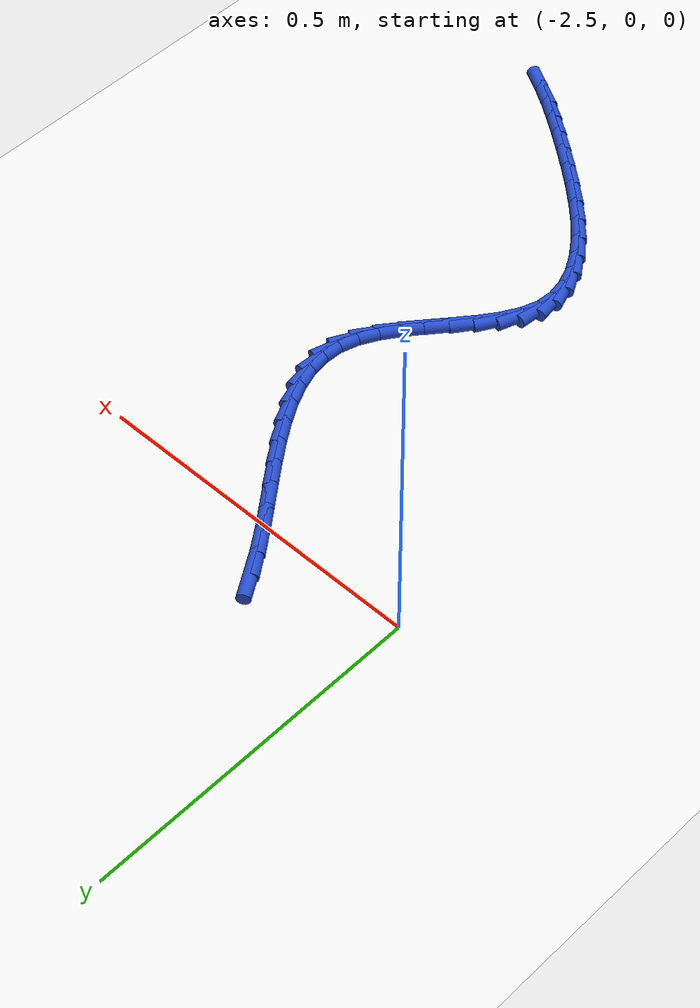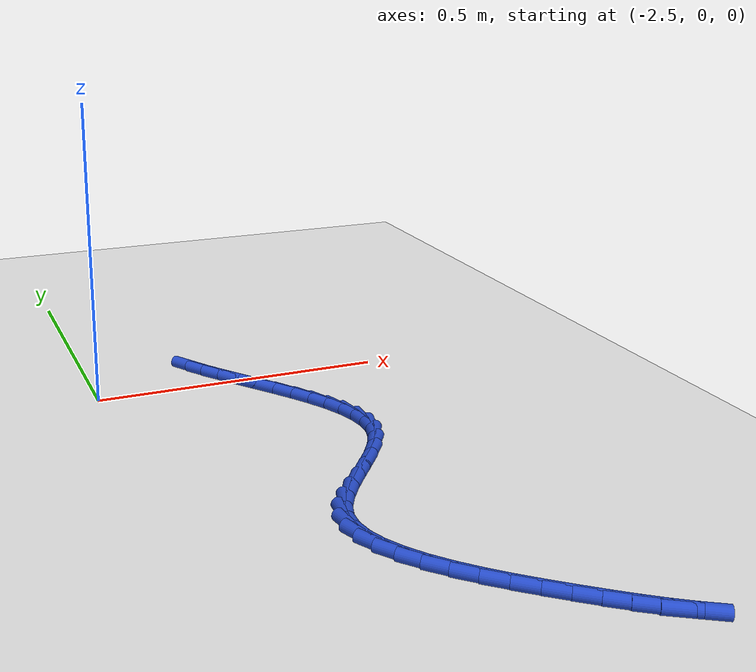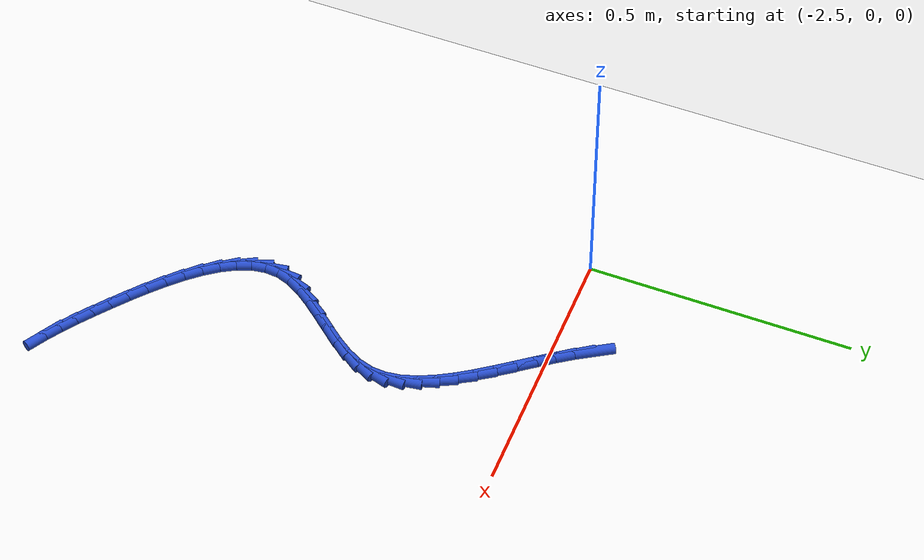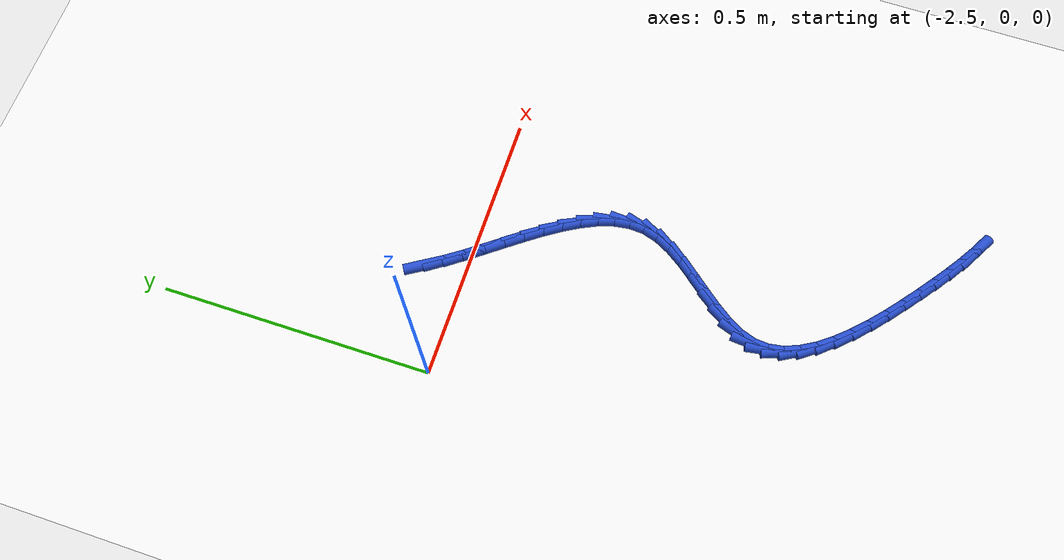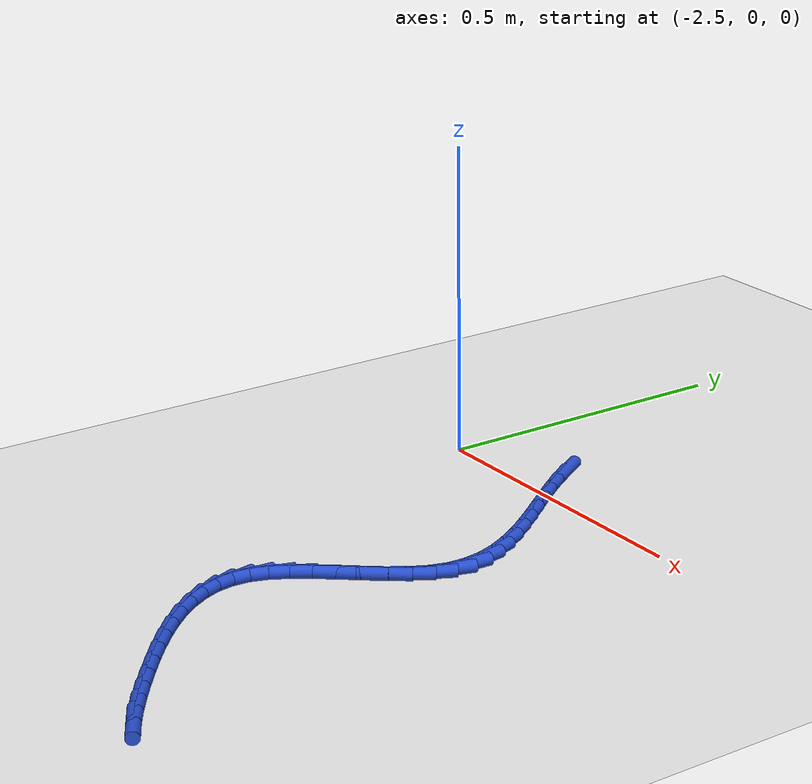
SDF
<sdf version="1.6">
 <world name="default">
  <model name="ground_plane">
   <static>1</static>
   <link name="link">
    <collision name="collision">
     <geometry><plane><normal>0 0 1</normal><size>100 100</size></plane></geometry>
     <surface><friction><ode><mu>100</mu><mu2>50</mu2></ode></friction></surface>
    </collision>
    <visual name="visual">
     <cast_shadows>0</cast_shadows>
     <geometry><plane><normal>0 0 1</normal><size>100 100</size></plane></geometry>
     <material>
      <script><uri>file://media/materials/scripts/gazebo.material</uri><name>Gazebo/WhiteGlow</name></script>
     </material>
    </visual>
   </link>
  </model>
  <model name="line">
   <link name="link_146">
    <pose>-2.315279855763042 0.0722972242808466 0.01 0 1.57 -1.017816893994714</pose>
    <collision name="collision">
     <geometry><cylinder><radius>0.01</radius><length>0.08</length></cylinder></geometry>
    </collision>
    <visual name="visual">
     <material>
      <script><name>Gazebo/Blue</name><uri>file://media/materials/scripts/gazebo.material</uri></script>
     </material>
     <geometry><cylinder><radius>0.01</radius><length>0.08</length></cylinder></geometry>
    </visual>
   </link>
   <link name="link_147">
    <pose>-2.2972540601399776 0.04309203704351529 0.01 0 1.57 -0.9662664591276655</pose>
    <collision name="collision">
     <geometry><cylinder><radius>0.01</radius><length>0.08</length></cylinder></geometry>
    </collision>
    <visual name="visual">
     <material>
      <script><name>Gazebo/Blue</name><uri>file://media/materials/scripts/gazebo.material</uri></script>
     </material>
     <geometry><cylinder><radius>0.01</radius><length>0.08</length></cylinder></geometry>
    </visual>
   </link>
   <link name="link_148">
    <pose>-2.2768504202480457 0.013556112961757995 0.01 0 1.57 -0.9357931041575855</pose>
    <collision name="collision">
     <geometry><cylinder><radius>0.01</radius><length>0.08</length></cylinder></geometry>
    </collision>
    <visual name="visual">
     <material>
      <script><name>Gazebo/Blue</name><uri>file://media/materials/scripts/gazebo.material</uri></script>
     </material>
     <geometry><cylinder><radius>0.01</radius><length>0.08</length></cylinder></geometry>
    </visual>
   </link>
   <link name="link_149">
    <pose>-2.254903447379552 -0.01623053103309701 0.01 0 1.57 -0.9232955045381015</pose>
    <collision name="collision">
     <geometry><cylinder><radius>0.01</radius><length>0.08</length></cylinder></geometry>
    </collision>
    <visual name="visual">
     <material>
      <script><name>Gazebo/Blue</name><uri>file://media/materials/scripts/gazebo.material</uri></script>
     </material>
     <geometry><cylinder><radius>0.01</radius><length>0.08</length></cylinder></geometry>
    </visual>
   </link>
   <link name="link_150">
    <pose>-2.232247652826802 -0.04618787800972144 0.01 0 1.57 -0.9274213176591661</pose>
    <collision name="collision">
     <geometry><cylinder><radius>0.01</radius><length>0.08</length></cylinder></geometry>
    </collision>
    <visual name="visual">
     <material>
      <script><name>Gazebo/Blue</name><uri>file://media/materials/scripts/gazebo.material</uri></script>
     </material>
     <geometry><cylinder><radius>0.01</radius><length>0.08</length></cylinder></geometry>
    </visual>
   </link>
   <link name="link_151">
    <pose>-2.209717547882098 -0.0762359110367869 0.01 0 1.57 -0.948360529244994</pose>
    <collision name="collision">
     <geometry><cylinder><radius>0.01</radius><length>0.08</length></cylinder></geometry>
    </collision>
    <visual name="visual">
     <material>
      <script><name>Gazebo/Blue</name><uri>file://media/materials/scripts/gazebo.material</uri></script>
     </material>
     <geometry><cylinder><radius>0.01</radius><length>0.08</length></cylinder></geometry>
    </visual>
   </link>
   <link name="link_152">
    <pose>-2.1881476438377447 -0.10629461318296515 0.01 0 1.57 -0.9878364611214976</pose>
    <collision name="collision">
     <geometry><cylinder><radius>0.01</radius><length>0.08</length></cylinder></geometry>
    </collision>
    <visual name="visual">
     <material>
      <script><name>Gazebo/Blue</name><uri>file://media/materials/scripts/gazebo.material</uri></script>
     </material>
     <geometry><cylinder><radius>0.01</radius><length>0.08</length></cylinder></geometry>
    </visual>
   </link>
   <link name="link_153">
    <pose>-2.168372451986047 -0.1362839675169279 0.01 0 1.57 -1.0492649682428505</pose>
    <collision name="collision">
     <geometry><cylinder><radius>0.01</radius><length>0.08</length></cylinder></geometry>
    </collision>
    <visual name="visual">
     <material>
      <script><name>Gazebo/Blue</name><uri>file://media/materials/scripts/gazebo.material</uri></script>
     </material>
     <geometry><cylinder><radius>0.01</radius><length>0.08</length></cylinder></geometry>
    </visual>
   </link>
   <link name="link_154">
    <pose>-2.1512264836193093 -0.1661239571073468 0.01 0 1.57 -1.1379487752292654</pose>
    <collision name="collision">
     <geometry><cylinder><radius>0.01</radius><length>0.08</length></cylinder></geometry>
    </collision>
    <visual name="visual">
     <material>
      <script><name>Gazebo/Blue</name><uri>file://media/materials/scripts/gazebo.material</uri></script>
     </material>
     <geometry><cylinder><radius>0.01</radius><length>0.08</length></cylinder></geometry>
    </visual>
   </link>
   <link name="link_155">
    <pose>-2.1375442500298343 -0.19573456502289438 0.01 0 1.57 -1.2608581011510018</pose>
    <collision name="collision">
     <geometry><cylinder><radius>0.01</radius><length>0.08</length></cylinder></geometry>
    </collision>
    <visual name="visual">
     <material>
      <script><name>Gazebo/Blue</name><uri>file://media/materials/scripts/gazebo.material</uri></script>
     </material>
     <geometry><cylinder><radius>0.01</radius><length>0.08</length></cylinder></geometry>
    </visual>
   </link>
   <link name="link_156">
    <pose>-2.128160262509929 -0.22503577433224065 0.01 0 1.57 -1.4248011398968028</pose>
    <collision name="collision">
     <geometry><cylinder><radius>0.01</radius><length>0.08</length></cylinder></geometry>
    </collision>
    <visual name="visual">
     <material>
      <script><name>Gazebo/Blue</name><uri>file://media/materials/scripts/gazebo.material</uri></script>
     </material>
     <geometry><cylinder><radius>0.01</radius><length>0.08</length></cylinder></geometry>
    </visual>
   </link>
   <link name="link_157">
    <pose>-2.1239090323518974 -0.2539475681040582 0.01 0 1.57 1.5105354790846894</pose>
    <collision name="collision">
     <geometry><cylinder><radius>0.01</radius><length>0.08</length></cylinder></geometry>
    </collision>
    <visual name="visual">
     <material>
      <script><name>Gazebo/Blue</name><uri>file://media/materials/scripts/gazebo.material</uri></script>
     </material>
     <geometry><cylinder><radius>0.01</radius><length>0.08</length></cylinder></geometry>
    </visual>
   </link>
   <link name="link_158">
    <pose>-2.125625070848042 -0.28238992940701857 0.01 0 1.57 1.2790282979590093</pose>
    <collision name="collision">
     <geometry><cylinder><radius>0.01</radius><length>0.08</length></cylinder></geometry>
    </collision>
    <visual name="visual">
     <material>
      <script><name>Gazebo/Blue</name><uri>file://media/materials/scripts/gazebo.material</uri></script>
     </material>
     <geometry><cylinder><radius>0.01</radius><length>0.08</length></cylinder></geometry>
    </visual>
   </link>
   <link name="link_159">
    <pose>-2.134005398848386 -0.31029280005436516 0.01 0 1.57 1.090360282627734</pose>
    <collision name="collision">
     <geometry><cylinder><radius>0.01</radius><length>0.08</length></cylinder></geometry>
    </collision>
    <visual name="visual">
     <material>
      <script><name>Gazebo/Blue</name><uri>file://media/materials/scripts/gazebo.material</uri></script>
     </material>
     <geometry><cylinder><radius>0.01</radius><length>0.08</length></cylinder></geometry>
    </visual>
   </link>
   <link name="link_160">
    <pose>-2.1482849219520306 -0.33769202618313465 0.01 0 1.57 0.9692156980696318</pose>
    <collision name="collision">
     <geometry><cylinder><radius>0.01</radius><length>0.08</length></cylinder></geometry>
    </collision>
    <visual name="visual">
     <material>
      <script><name>Gazebo/Blue</name><uri>file://media/materials/scripts/gazebo.material</uri></script>
     </material>
     <geometry><cylinder><radius>0.01</radius><length>0.08</length></cylinder></geometry>
    </visual>
   </link>
   <link name="link_161">
    <pose>-2.1668161381312383 -0.3646873687161321 0.01 0 1.57 0.901342558071176</pose>
    <collision name="collision">
     <geometry><cylinder><radius>0.01</radius><length>0.08</length></cylinder></geometry>
    </collision>
    <visual name="visual">
     <material>
      <script><name>Gazebo/Blue</name><uri>file://media/materials/scripts/gazebo.material</uri></script>
     </material>
     <geometry><cylinder><radius>0.01</radius><length>0.08</length></cylinder></geometry>
    </visual>
   </link>
   <link name="link_162">
    <pose>-2.187939347261384 -0.3913794721119861 0.01 0 1.57 0.876483480189133</pose>
    <collision name="collision">
     <geometry><cylinder><radius>0.01</radius><length>0.08</length></cylinder></geometry>
    </collision>
    <visual name="visual">
     <material>
      <script><name>Gazebo/Blue</name><uri>file://media/materials/scripts/gazebo.material</uri></script>
     </material>
     <geometry><cylinder><radius>0.01</radius><length>0.08</length></cylinder></geometry>
    </visual>
   </link>
   <link name="link_163">
    <pose>-2.2099948492178445 -0.4178689808293251 0.01 0 1.57 0.8910370679307545</pose>
    <collision name="collision">
     <geometry><cylinder><radius>0.01</radius><length>0.08</length></cylinder></geometry>
    </collision>
    <visual name="visual">
     <material>
      <script><name>Gazebo/Blue</name><uri>file://media/materials/scripts/gazebo.material</uri></script>
     </material>
     <geometry><cylinder><radius>0.01</radius><length>0.08</length></cylinder></geometry>
    </visual>
   </link>
   <link name="link_164">
    <pose>-2.2313229438759934 -0.44425653932677833 0.01 0 1.57 0.9482002934439329</pose>
    <collision name="collision">
     <geometry><cylinder><radius>0.01</radius><length>0.08</length></cylinder></geometry>
    </collision>
    <visual name="visual">
     <material>
      <script><name>Gazebo/Blue</name><uri>file://media/materials/scripts/gazebo.material</uri></script>
     </material>
     <geometry><cylinder><radius>0.01</radius><length>0.08</length></cylinder></geometry>
    </visual>
   </link>
   <link name="link_165">
    <pose>-2.2502639311112067 -0.47064279206297294 0.01 0 1.57 1.0585206096835642</pose>
    <collision name="collision">
     <geometry><cylinder><radius>0.01</radius><length>0.08</length></cylinder></geometry>
    </collision>
    <visual name="visual">
     <material>
      <script><name>Gazebo/Blue</name><uri>file://media/materials/scripts/gazebo.material</uri></script>
     </material>
     <geometry><cylinder><radius>0.01</radius><length>0.08</length></cylinder></geometry>
    </visual>
   </link>
   <link name="link_166">
    <pose>-2.265158110798859 -0.4971283834965381 0.01 0 1.57 1.2392141949887399</pose>
    <collision name="collision">
     <geometry><cylinder><radius>0.01</radius><length>0.08</length></cylinder></geometry>
    </collision>
    <visual name="visual">
     <material>
      <script><name>Gazebo/Blue</name><uri>file://media/materials/scripts/gazebo.material</uri></script>
     </material>
     <geometry><cylinder><radius>0.01</radius><length>0.08</length></cylinder></geometry>
    </visual>
   </link>
   <link name="link_167">
    <pose>-2.2743457828143265 -0.5238139580861025 0.01 0 1.57 1.489806687305473</pose>
    <collision name="collision">
     <geometry><cylinder><radius>0.01</radius><length>0.08</length></cylinder></geometry>
    </collision>
    <visual name="visual">
     <material>
      <script><name>Gazebo/Blue</name><uri>file://media/materials/scripts/gazebo.material</uri></script>
     </material>
     <geometry><cylinder><radius>0.01</radius><length>0.08</length></cylinder></geometry>
    </visual>
   </link>
   <link name="link_168">
    <pose>-2.276533126979127 -0.5507625849463319 0.01 0 1.57 -1.4075789394485612</pose>
    <collision name="collision">
     <geometry><cylinder><radius>0.01</radius><length>0.08</length></cylinder></geometry>
    </collision>
    <visual name="visual">
     <material>
      <script><name>Gazebo/Blue</name><uri>file://media/materials/scripts/gazebo.material</uri></script>
     </material>
     <geometry><cylinder><radius>0.01</radius><length>0.08</length></cylinder></geometry>
    </visual>
   </link>
   <link name="link_169">
    <pose>-2.2720692430251304 -0.5778686076812856 0.01 0 1.57 -1.2075491967132144</pose>
    <collision name="collision">
     <geometry><cylinder><radius>0.01</radius><length>0.08</length></cylinder></geometry>
    </collision>
    <visual name="visual">
     <material>
      <script><name>Gazebo/Blue</name><uri>file://media/materials/scripts/gazebo.material</uri></script>
     </material>
     <geometry><cylinder><radius>0.01</radius><length>0.08</length></cylinder></geometry>
    </visual>
   </link>
   <link name="link_170">
    <pose>-2.2617641756060523 -0.6049790315148547 0.01 0 1.57 -1.0536257250494567</pose>
    <collision name="collision">
     <geometry><cylinder><radius>0.01</radius><length>0.08</length></cylinder></geometry>
    </collision>
    <visual name="visual">
     <material>
      <script><name>Gazebo/Blue</name><uri>file://media/materials/scripts/gazebo.material</uri></script>
     </material>
     <geometry><cylinder><radius>0.01</radius><length>0.08</length></cylinder></geometry>
    </visual>
   </link>
   <link name="link_171">
    <pose>-2.246427992885044 -0.6319408592565452 0.01 0 1.57 -0.9378916158699203</pose>
    <collision name="collision">
     <geometry><cylinder><radius>0.01</radius><length>0.08</length></cylinder></geometry>
    </collision>
    <visual name="visual">
     <material>
      <script><name>Gazebo/Blue</name><uri>file://media/materials/scripts/gazebo.material</uri></script>
     </material>
     <geometry><cylinder><radius>0.01</radius><length>0.08</length></cylinder></geometry>
    </visual>
   </link>
   <link name="link_172">
    <pose>-2.2268707630252593 -0.6586010937158637 0.01 0 1.57 -0.8511398044475058</pose>
    <collision name="collision">
     <geometry><cylinder><radius>0.01</radius><length>0.08</length></cylinder></geometry>
    </collision>
    <visual name="visual">
     <material>
      <script><name>Gazebo/Blue</name><uri>file://media/materials/scripts/gazebo.material</uri></script>
     </material>
     <geometry><cylinder><radius>0.01</radius><length>0.08</length></cylinder></geometry>
    </visual>
   </link>
   <link name="link_173">
    <pose>-2.203902554189849 -0.6848067377023169 0.01 0 1.57 -0.7859636953342192</pose>
    <collision name="collision">
     <geometry><cylinder><radius>0.01</radius><length>0.08</length></cylinder></geometry>
    </collision>
    <visual name="visual">
     <material>
      <script><name>Gazebo/Blue</name><uri>file://media/materials/scripts/gazebo.material</uri></script>
     </material>
     <geometry><cylinder><radius>0.01</radius><length>0.08</length></cylinder></geometry>
    </visual>
   </link>
   <link name="link_174">
    <pose>-2.178333434541967 -0.7104047940254096 0.01 0 1.57 -0.7371097760226253</pose>
    <collision name="collision">
     <geometry><cylinder><radius>0.01</radius><length>0.08</length></cylinder></geometry>
    </collision>
    <visual name="visual">
     <material>
      <script><name>Gazebo/Blue</name><uri>file://media/materials/scripts/gazebo.material</uri></script>
     </material>
     <geometry><cylinder><radius>0.01</radius><length>0.08</length></cylinder></geometry>
    </visual>
   </link>
   <link name="link_175">
    <pose>-2.1509734722447647 -0.7352422654946481 0.01 0 1.57 -0.7010891818610059</pose>
    <collision name="collision">
     <geometry><cylinder><radius>0.01</radius><length>0.08</length></cylinder></geometry>
    </collision>
    <visual name="visual">
     <material>
      <script><name>Gazebo/Blue</name><uri>file://media/materials/scripts/gazebo.material</uri></script>
     </material>
     <geometry><cylinder><radius>0.01</radius><length>0.08</length></cylinder></geometry>
    </visual>
   </link>
   <link name="link_176">
    <pose>-2.1226327354613943 -0.7591661549195394 0.01 0 1.57 -0.6757699694738222</pose>
    <collision name="collision">
     <geometry><cylinder><radius>0.01</radius><length>0.08</length></cylinder></geometry>
    </collision>
    <visual name="visual">
     <material>
      <script><name>Gazebo/Blue</name><uri>file://media/materials/scripts/gazebo.material</uri></script>
     </material>
     <geometry><cylinder><radius>0.01</radius><length>0.08</length></cylinder></geometry>
    </visual>
   </link>
   <link name="link_177">
    <pose>-2.094121292355008 -0.7820234651095894 0.01 0 1.57 -0.6593865141255973</pose>
    <collision name="collision">
     <geometry><cylinder><radius>0.01</radius><length>0.08</length></cylinder></geometry>
    </collision>
    <visual name="visual">
     <material>
      <script><name>Gazebo/Blue</name><uri>file://media/materials/scripts/gazebo.material</uri></script>
     </material>
     <geometry><cylinder><radius>0.01</radius><length>0.08</length></cylinder></geometry>
    </visual>
   </link>
   <link name="link_178">
    <pose>-2.066204216322801 -0.8036626151996016 0.01 0 1.57 -0.6413396328205769</pose>
    <collision name="collision">
     <geometry><cylinder><radius>0.01</radius><length>0.08</length></cylinder></geometry>
    </collision>
    <visual name="visual">
     <material>
      <script><name>Gazebo/Blue</name><uri>file://media/materials/scripts/gazebo.material</uri></script>
     </material>
     <geometry><cylinder><radius>0.01</radius><length>0.08</length></cylinder></geometry>
    </visual>
   </link>
   <link name="link_179">
    <pose>-2.039030304001466 -0.82395142321107 0.01 0 1.57 -0.6134871846660168</pose>
    <collision name="collision">
     <geometry><cylinder><radius>0.01</radius><length>0.08</length></cylinder></geometry>
    </collision>
    <visual name="visual">
     <material>
      <script><name>Gazebo/Blue</name><uri>file://media/materials/scripts/gazebo.material</uri></script>
     </material>
     <geometry><cylinder><radius>0.01</radius><length>0.08</length></cylinder></geometry>
    </visual>
   </link>
   <link name="link_180">
    <pose>-2.012301491694476 -0.8427717732369759 0.01 0 1.57 -0.5750371830360177</pose>
    <collision name="collision">
     <geometry><cylinder><radius>0.01</radius><length>0.08</length></cylinder></geometry>
    </collision>
    <visual name="visual">
     <material>
      <script><name>Gazebo/Blue</name><uri>file://media/materials/scripts/gazebo.material</uri></script>
     </material>
     <geometry><cylinder><radius>0.01</radius><length>0.08</length></cylinder></geometry>
    </visual>
   </link>
   <link name="link_181">
    <pose>-1.9857097055772432 -0.8600058644646748 0.01 0 1.57 -0.5257959262623092</pose>
    <collision name="collision">
     <geometry><cylinder><radius>0.01</radius><length>0.08</length></cylinder></geometry>
    </collision>
    <visual name="visual">
     <material>
      <script><name>Gazebo/Blue</name><uri>file://media/materials/scripts/gazebo.material</uri></script>
     </material>
     <geometry><cylinder><radius>0.01</radius><length>0.08</length></cylinder></geometry>
    </visual>
   </link>
  </model>
 </world>
</sdf>
